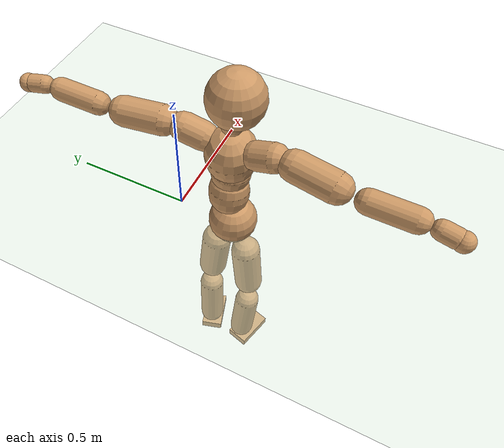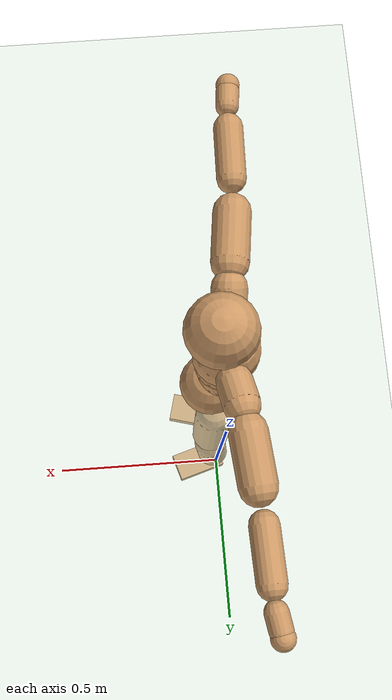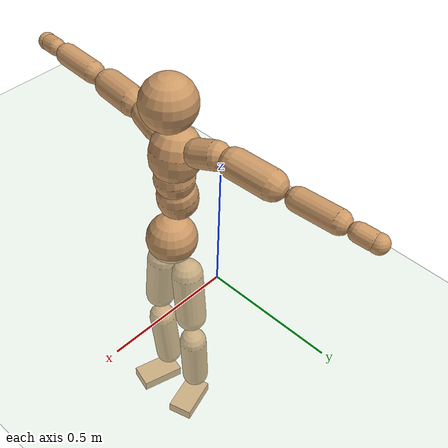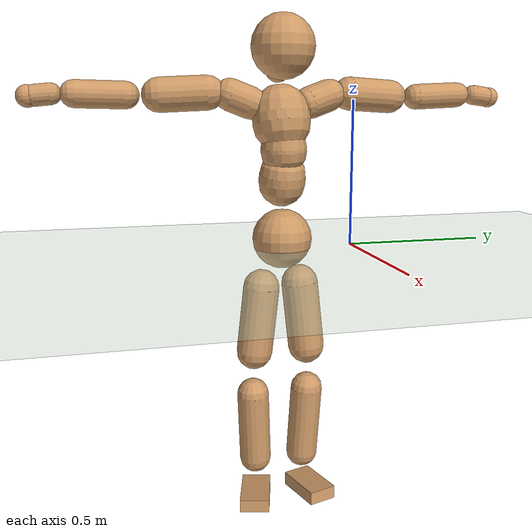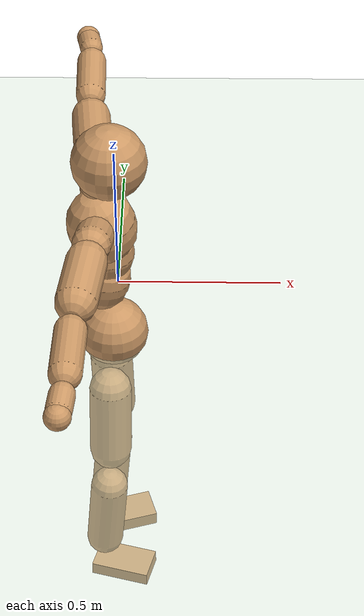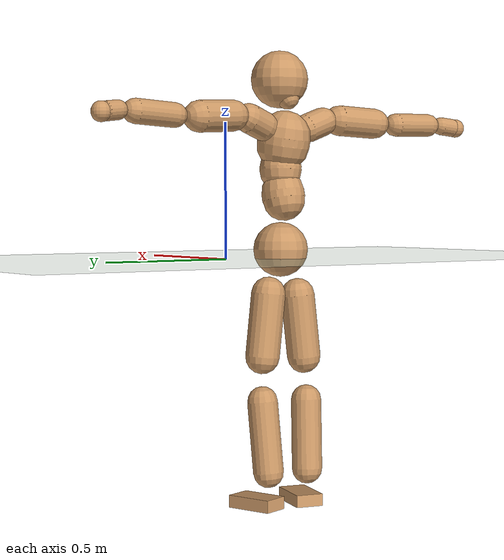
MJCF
<mujoco model="humanoid">
  <compiler coordinate="local"/>
  <default>
    <joint damping="0.0" armature="0.01" stiffness="0.0" limited="true"/>
    <geom conaffinity="1" condim="3" contype="7" margin="0.001" rgba="0.8 0.6 .4 1"/>
  </default>
  <asset>
    <texture type="skybox" builtin="gradient" rgb1=".4 .5 .6" rgb2="0 0 0" width="100" height="100"/>
    <texture builtin="flat" height="1278" mark="cross" markrgb="1 1 1" name="texgeom" random="0.01" rgb1="0.8 0.6 0.4" rgb2="0.8 0.6 0.4" type="cube" width="127"/>
    <texture builtin="checker" height="100" name="texplane" rgb1="0 0 0" rgb2="0.8 0.8 0.8" type="2d" width="100"/>
    <material name="MatPlane" reflectance="0.5" shininess="1" specular="1" texrepeat="60 60" texture="texplane"/>
    <material name="geom" texture="texgeom" texuniform="true"/>
  </asset>
  <worldbody>
    <light cutoff="100" diffuse="1 1 1" dir="-0 0 -1.3" directional="true" exponent="1" pos="0 0 1.3" specular=".1 .1 .1"/>
    <geom conaffinity="1" condim="3" name="floor" pos="0 0 0" rgba="0.8 0.9 0.8 1" size="100 100 .2" type="plane" material="MatPlane"/>
    <body name="Pelvis" pos="-0.0026 -0.2494 0.0318">
      <freejoint name="Pelvis"/>
      <geom type="sphere" contype="1" conaffinity="1" density="500" size="0.1029" pos="0.0000 0.0000 0.0000" name="Pelvis"/>
      <body name="L_Hip" pos="-0.0166 0.0605 -0.0858">
        <joint name="L_Hip_x" type="hinge" pos="0 0 0" axis="1 0 0" stiffness="800" damping="80" armature="0.02" range="-180.0000 180.0000"/>
        <joint name="L_Hip_y" type="hinge" pos="0 0 0" axis="0 1 0" stiffness="800" damping="80" armature="0.02" range="-180.0000 180.0000"/>
        <joint name="L_Hip_z" type="hinge" pos="0 0 0" axis="0 0 1" stiffness="800" damping="80" armature="0.02" range="-180.0000 180.0000"/>
        <geom type="capsule" contype="1" conaffinity="1" density="500" fromto="0.0011 0.0083 -0.0788 0.0044 0.0334 -0.3154" size="0.0641" name="L_Hip"/>
        <body name="L_Knee" pos="0.0055 0.0417 -0.3942">
          <joint name="L_Knee_x" type="hinge" pos="0 0 0" axis="1 0 0" stiffness="800" damping="80" armature="0.02" range="-180.0000 180.0000"/>
          <joint name="L_Knee_y" type="hinge" pos="0 0 0" axis="0 1 0" stiffness="800" damping="80" armature="0.02" range="-180.0000 180.0000"/>
          <joint name="L_Knee_z" type="hinge" pos="0 0 0" axis="0 0 1" stiffness="800" damping="80" armature="0.02" range="-180.0000 180.0000"/>
          <geom type="capsule" contype="1" conaffinity="1" density="500" fromto="-0.0081 -0.0032 -0.0883 -0.0324 -0.0129 -0.3532" size="0.0574" name="L_Knee"/>
          <body name="L_Ankle" pos="-0.0405 -0.0162 -0.4415">
            <joint name="L_Ankle_x" type="hinge" pos="0 0 0" axis="1 0 0" stiffness="800" damping="80" armature="0.02" range="-180.0000 180.0000"/>
            <joint name="L_Ankle_y" type="hinge" pos="0 0 0" axis="0 1 0" stiffness="800" damping="80" armature="0.02" range="-180.0000 180.0000"/>
            <joint name="L_Ankle_z" type="hinge" pos="0 0 0" axis="0 0 1" stiffness="800" damping="80" armature="0.02" range="-180.0000 180.0000"/>
            <geom type="box" contype="1" conaffinity="1" density="500" pos="0.0628 0.0191 -0.0308" size="0.0909 0.0516 0.0236" quat="0.9892 0.0000 0.0000 0.1468" name="L_Ankle"/>
            <body name="L_Toe" pos="0.1256 0.0381 -0.0616">
              <joint name="L_Toe_x" type="hinge" pos="0 0 0" axis="1 0 0" stiffness="500" damping="50" armature="0.02" range="-180.0000 180.0000"/>
              <joint name="L_Toe_y" type="hinge" pos="0 0 0" axis="0 1 0" stiffness="500" damping="50" armature="0.02" range="-180.0000 180.0000"/>
              <joint name="L_Toe_z" type="hinge" pos="0 0 0" axis="0 0 1" stiffness="500" damping="50" armature="0.02" range="-180.0000 180.0000"/>
              <geom type="box" contype="1" conaffinity="1" density="500" pos="0.0000 0.0000 0.0300" size="0.0011 0.0026 0.0011" quat="0.9884 0.0000 0.0000 0.1517" name="L_Toe"/>
            </body>
          </body>
        </body>
      </body>
      <body name="R_Hip" pos="-0.0112 -0.0628 -0.095">
        <joint name="R_Hip_x" type="hinge" pos="0 0 0" axis="1 0 0" stiffness="800" damping="80" armature="0.02" range="-180.0000 180.0000"/>
        <joint name="R_Hip_y" type="hinge" pos="0 0 0" axis="0 1 0" stiffness="800" damping="80" armature="0.02" range="-180.0000 180.0000"/>
        <joint name="R_Hip_z" type="hinge" pos="0 0 0" axis="0 0 1" stiffness="800" damping="80" armature="0.02" range="-180.0000 180.0000"/>
        <geom type="capsule" contype="1" conaffinity="1" density="500" fromto="-0.0015 -0.0086 -0.0788 -0.0060 -0.0343 -0.3152" size="0.0636" name="R_Hip"/>
        <body name="R_Knee" pos="-0.0075 -0.0429 -0.394">
          <joint name="R_Knee_x" type="hinge" pos="0 0 0" axis="1 0 0" stiffness="800" damping="80" armature="0.02" range="-180.0000 180.0000"/>
          <joint name="R_Knee_y" type="hinge" pos="0 0 0" axis="0 1 0" stiffness="800" damping="80" armature="0.02" range="-180.0000 180.0000"/>
          <joint name="R_Knee_z" type="hinge" pos="0 0 0" axis="0 0 1" stiffness="800" damping="80" armature="0.02" range="-180.0000 180.0000"/>
          <geom type="capsule" contype="1" conaffinity="1" density="500" fromto="-0.0074 0.0041 -0.0872 -0.0297 0.0163 -0.3486" size="0.0573" name="R_Knee"/>
          <body name="R_Ankle" pos="-0.0371 0.0204 -0.4358">
            <joint name="R_Ankle_x" type="hinge" pos="0 0 0" axis="1 0 0" stiffness="800" damping="80" armature="0.02" range="-180.0000 180.0000"/>
            <joint name="R_Ankle_y" type="hinge" pos="0 0 0" axis="0 1 0" stiffness="800" damping="80" armature="0.02" range="-180.0000 180.0000"/>
            <joint name="R_Ankle_z" type="hinge" pos="0 0 0" axis="0 0 1" stiffness="800" damping="80" armature="0.02" range="-180.0000 180.0000"/>
            <geom type="box" contype="1" conaffinity="1" density="500" pos="0.0668 -0.0180 -0.0319" size="0.0925 0.0525 0.0231" quat="0.9914 0.0000 0.0000 -0.1312" name="R_Ankle"/>
            <body name="R_Toe" pos="0.1336 -0.036 -0.0638">
              <joint name="R_Toe_x" type="hinge" pos="0 0 0" axis="1 0 0" stiffness="500" damping="50" armature="0.02" range="-180.0000 180.0000"/>
              <joint name="R_Toe_y" type="hinge" pos="0 0 0" axis="0 1 0" stiffness="500" damping="50" armature="0.02" range="-180.0000 180.0000"/>
              <joint name="R_Toe_z" type="hinge" pos="0 0 0" axis="0 0 1" stiffness="500" damping="50" armature="0.02" range="-180.0000 180.0000"/>
              <geom type="box" contype="1" conaffinity="1" density="500" pos="0.0000 0.0000 0.0323" size="0.0011 0.0026 0.0012" quat="0.9925 0.0000 0.0000 -0.1225" name="R_Toe"/>
            </body>
          </body>
        </body>
      </body>
      <body name="Torso" pos="-0.0405 0.0048 0.1317">
        <joint name="Torso_x" type="hinge" pos="0 0 0" axis="1 0 0" stiffness="1000" damping="100" armature="0.02" range="-180.0000 180.0000"/>
        <joint name="Torso_y" type="hinge" pos="0 0 0" axis="0 1 0" stiffness="1000" damping="100" armature="0.02" range="-180.0000 180.0000"/>
        <joint name="Torso_z" type="hinge" pos="0 0 0" axis="0 0 1" stiffness="1000" damping="100" armature="0.02" range="-180.0000 180.0000"/>
        <geom type="capsule" contype="1" conaffinity="1" density="500" fromto="0.0167 0.0029 0.0853 0.0111 0.0020 0.0569" size="0.080538" name="Torso"/>
        <body name="Spine" pos="0.0278 0.0049 0.1421">
          <joint name="Spine_x" type="hinge" pos="0 0 0" axis="1 0 0" stiffness="1000" damping="100" armature="0.02" range="-180.0000 180.0000"/>
          <joint name="Spine_y" type="hinge" pos="0 0 0" axis="0 1 0" stiffness="1000" damping="100" armature="0.02" range="-180.0000 180.0000"/>
          <joint name="Spine_z" type="hinge" pos="0 0 0" axis="0 0 1" stiffness="1000" damping="100" armature="0.02" range="-180.0000 180.0000"/>
          <geom type="capsule" contype="1" conaffinity="1" density="500" fromto="0.0023 -0.0016 0.0346 0.0015 -0.0011 0.0231" size="0.07905" name="Spine"/>
          <body name="Chest" pos="0.0038 -0.0027 0.0577">
            <joint name="Chest_x" type="hinge" pos="0 0 0" axis="1 0 0" stiffness="1000" damping="100" armature="0.02" range="-180.0000 180.0000"/>
            <joint name="Chest_y" type="hinge" pos="0 0 0" axis="0 1 0" stiffness="1000" damping="100" armature="0.02" range="-180.0000 180.0000"/>
            <joint name="Chest_z" type="hinge" pos="0 0 0" axis="0 0 1" stiffness="1000" damping="100" armature="0.02" range="-180.0000 180.0000"/>
            <geom type="capsule" contype="1" conaffinity="1" density="500" fromto="-0.0168 -0.0050 0.0906 -0.0112 -0.0034 0.0604" size="0.099138" name="Chest"/>
            <body name="Neck" pos="-0.0379 -0.0144 0.2185">
              <joint name="Neck_x" type="hinge" pos="0 0 0" axis="1 0 0" stiffness="500" damping="50" armature="0.02" range="-180.0000 180.0000"/>
              <joint name="Neck_y" type="hinge" pos="0 0 0" axis="0 1 0" stiffness="500" damping="50" armature="0.02" range="-180.0000 180.0000"/>
              <joint name="Neck_z" type="hinge" pos="0 0 0" axis="0 0 1" stiffness="500" damping="50" armature="0.02" range="-180.0000 180.0000"/>
              <geom type="capsule" contype="1" conaffinity="1" density="500" fromto="0.0102 0.0019 0.0175 0.0408 0.0075 0.0702" size="0.043617" name="Neck"/>
              <body name="Head" pos="0.051 0.0093 0.0877">
                <joint name="Head_x" type="hinge" pos="0 0 0" axis="1 0 0" stiffness="500" damping="50" armature="0.02" range="-180.0000 180.0000"/>
                <joint name="Head_y" type="hinge" pos="0 0 0" axis="0 1 0" stiffness="500" damping="50" armature="0.02" range="-180.0000 180.0000"/>
                <joint name="Head_z" type="hinge" pos="0 0 0" axis="0 0 1" stiffness="500" damping="50" armature="0.02" range="-180.0000 180.0000"/>
                <geom type="sphere" contype="1" conaffinity="1" density="500" size="0.1073" pos="0.0000 0.0000 0.0000" name="Head"/>
              </body>
            </body>
            <body name="L_Thorax" pos="-0.0209 0.0728 0.118">
              <joint name="L_Thorax_x" type="hinge" pos="0 0 0" axis="1 0 0" stiffness="500" damping="50" armature="0.02" range="-180.0000 180.0000"/>
              <joint name="L_Thorax_y" type="hinge" pos="0 0 0" axis="0 1 0" stiffness="500" damping="50" armature="0.02" range="-180.0000 180.0000"/>
              <joint name="L_Thorax_z" type="hinge" pos="0 0 0" axis="0 0 1" stiffness="500" damping="50" armature="0.02" range="-180.0000 180.0000"/>
              <geom type="capsule" contype="1" conaffinity="1" density="500" fromto="-0.0042 0.0249 0.0086 -0.0170 0.0995 0.0345" size="0.0547" name="L_Thorax"/>
              <body name="L_Shoulder" pos="-0.0212 0.1243 0.0431">
                <joint name="L_Shoulder_x" type="hinge" pos="0 0 0" axis="1 0 0" stiffness="500" damping="50" armature="0.02" range="-720.0000 720.0000"/>
                <joint name="L_Shoulder_y" type="hinge" pos="0 0 0" axis="0 1 0" stiffness="500" damping="50" armature="0.02" range="-720.0000 720.0000"/>
                <joint name="L_Shoulder_z" type="hinge" pos="0 0 0" axis="0 0 1" stiffness="500" damping="50" armature="0.02" range="-720.0000 720.0000"/>
                <geom type="capsule" contype="1" conaffinity="1" density="500" fromto="-0.0049 0.0518 -0.0030 -0.0196 0.2070 -0.0120" size="0.0575" name="L_Shoulder"/>
                <body name="L_Elbow" pos="-0.0244 0.2588 -0.015">
                  <joint name="L_Elbow_x" type="hinge" pos="0 0 0" axis="1 0 0" stiffness="500" damping="50" armature="0.02" range="-720.0000 720.0000"/>
                  <joint name="L_Elbow_y" type="hinge" pos="0 0 0" axis="0 1 0" stiffness="500" damping="50" armature="0.02" range="-720.0000 720.0000"/>
                  <joint name="L_Elbow_z" type="hinge" pos="0 0 0" axis="0 0 1" stiffness="500" damping="50" armature="0.02" range="-720.0000 720.0000"/>
                  <geom type="capsule" contype="1" conaffinity="1" density="500" fromto="-0.0015 0.0537 0.0025 -0.0059 0.2149 0.0099" size="0.0444" name="L_Elbow"/>
                  <body name="L_Wrist" pos="-0.0074 0.2686 0.0124">
                    <joint name="L_Wrist_x" type="hinge" pos="0 0 0" axis="1 0 0" stiffness="300" damping="30" armature="0.02" range="-180.0000 180.0000"/>
                    <joint name="L_Wrist_y" type="hinge" pos="0 0 0" axis="0 1 0" stiffness="300" damping="30" armature="0.02" range="-180.0000 180.0000"/>
                    <joint name="L_Wrist_z" type="hinge" pos="0 0 0" axis="0 0 1" stiffness="300" damping="30" armature="0.02" range="-180.0000 180.0000"/>
                    <geom type="capsule" contype="1" conaffinity="1" density="500" fromto="-0.0031 0.0175 -0.0021 -0.0125 0.0700 -0.0085" size="0.0348" name="L_Wrist"/>
                    <body name="L_Hand" pos="-0.0157 0.0874 -0.0107">
                      <joint name="L_Hand_x" type="hinge" pos="0 0 0" axis="1 0 0" stiffness="300" damping="30" armature="0.02" range="-180.0000 180.0000"/>
                      <joint name="L_Hand_y" type="hinge" pos="0 0 0" axis="0 1 0" stiffness="300" damping="30" armature="0.02" range="-180.0000 180.0000"/>
                      <joint name="L_Hand_z" type="hinge" pos="0 0 0" axis="0 0 1" stiffness="300" damping="30" armature="0.02" range="-180.0000 180.0000"/>
                      <geom type="sphere" contype="1" conaffinity="1" density="500" size="0.0360" pos="0.0000 0.0000 0.0000" name="L_Hand"/>
                    </body>
                  </body>
                </body>
              </body>
            </body>
            <body name="R_Thorax" pos="-0.0252 -0.0836 0.1167">
              <joint name="R_Thorax_x" type="hinge" pos="0 0 0" axis="1 0 0" stiffness="500" damping="50" armature="0.02" range="-180.0000 180.0000"/>
              <joint name="R_Thorax_y" type="hinge" pos="0 0 0" axis="0 1 0" stiffness="500" damping="50" armature="0.02" range="-180.0000 180.0000"/>
              <joint name="R_Thorax_z" type="hinge" pos="0 0 0" axis="0 0 1" stiffness="500" damping="50" armature="0.02" range="-180.0000 180.0000"/>
              <geom type="capsule" contype="1" conaffinity="1" density="500" fromto="-0.0019 -0.0227 0.0089 -0.0077 -0.0908 0.0357" size="0.0545" name="R_Thorax"/>
              <body name="R_Shoulder" pos="-0.0096 -0.1135 0.0446">
                <joint name="R_Shoulder_x" type="hinge" pos="0 0 0" axis="1 0 0" stiffness="500" damping="50" armature="0.02" range="-720.0000 720.0000"/>
                <joint name="R_Shoulder_y" type="hinge" pos="0 0 0" axis="0 1 0" stiffness="500" damping="50" armature="0.02" range="-720.0000 720.0000"/>
                <joint name="R_Shoulder_z" type="hinge" pos="0 0 0" axis="0 0 1" stiffness="500" damping="50" armature="0.02" range="-720.0000 720.0000"/>
                <geom type="capsule" contype="1" conaffinity="1" density="500" fromto="-0.0067 -0.0523 -0.0024 -0.0269 -0.2093 -0.0096" size="0.0579" name="R_Shoulder"/>
                <body name="R_Elbow" pos="-0.0337 -0.2616 -0.012">
                  <joint name="R_Elbow_x" type="hinge" pos="0 0 0" axis="1 0 0" stiffness="500" damping="50" armature="0.02" range="-720.0000 720.0000"/>
                  <joint name="R_Elbow_y" type="hinge" pos="0 0 0" axis="0 1 0" stiffness="500" damping="50" armature="0.02" range="-720.0000 720.0000"/>
                  <joint name="R_Elbow_z" type="hinge" pos="0 0 0" axis="0 0 1" stiffness="500" damping="50" armature="0.02" range="-720.0000 720.0000"/>
                  <geom type="capsule" contype="1" conaffinity="1" density="500" fromto="-0.0015 -0.0542 0.0012 -0.0058 -0.2166 0.0048" size="0.045" name="R_Elbow"/>
                  <body name="R_Wrist" pos="-0.0073 -0.2708 0.006">
                    <joint name="R_Wrist_x" type="hinge" pos="0 0 0" axis="1 0 0" stiffness="300" damping="30" armature="0.02" range="-180.0000 180.0000"/>
                    <joint name="R_Wrist_y" type="hinge" pos="0 0 0" axis="0 1 0" stiffness="300" damping="30" armature="0.02" range="-180.0000 180.0000"/>
                    <joint name="R_Wrist_z" type="hinge" pos="0 0 0" axis="0 0 1" stiffness="300" damping="30" armature="0.02" range="-180.0000 180.0000"/>
                    <geom type="capsule" contype="1" conaffinity="1" density="500" fromto="-0.0020 -0.0178 -0.0017 -0.0079 -0.0714 -0.0069" size="0.0353" name="R_Wrist"/>
                    <body name="R_Hand" pos="-0.0099 -0.0892 -0.0087">
                      <joint name="R_Hand_x" type="hinge" pos="0 0 0" axis="1 0 0" stiffness="300" damping="30" armature="0.02" range="-180.0000 180.0000"/>
                      <joint name="R_Hand_y" type="hinge" pos="0 0 0" axis="0 1 0" stiffness="300" damping="30" armature="0.02" range="-180.0000 180.0000"/>
                      <joint name="R_Hand_z" type="hinge" pos="0 0 0" axis="0 0 1" stiffness="300" damping="30" armature="0.02" range="-180.0000 180.0000"/>
                      <geom type="sphere" contype="1" conaffinity="1" density="500" size="0.0364" pos="0.0000 0.0000 0.0000" name="R_Hand"/>
                    </body>
                  </body>
                </body>
              </body>
            </body>
          </body>
        </body>
      </body>
    </body>
  </worldbody>
  <actuator>
    <motor name="L_Hip_x" joint="L_Hip_x" gear="500"/>
    <motor name="L_Hip_y" joint="L_Hip_y" gear="500"/>
    <motor name="L_Hip_z" joint="L_Hip_z" gear="500"/>
    <motor name="L_Knee_x" joint="L_Knee_x" gear="500"/>
    <motor name="L_Knee_y" joint="L_Knee_y" gear="500"/>
    <motor name="L_Knee_z" joint="L_Knee_z" gear="500"/>
    <motor name="L_Ankle_x" joint="L_Ankle_x" gear="500"/>
    <motor name="L_Ankle_y" joint="L_Ankle_y" gear="500"/>
    <motor name="L_Ankle_z" joint="L_Ankle_z" gear="500"/>
    <motor name="L_Toe_x" joint="L_Toe_x" gear="500"/>
    <motor name="L_Toe_y" joint="L_Toe_y" gear="500"/>
    <motor name="L_Toe_z" joint="L_Toe_z" gear="500"/>
    <motor name="R_Hip_x" joint="R_Hip_x" gear="500"/>
    <motor name="R_Hip_y" joint="R_Hip_y" gear="500"/>
    <motor name="R_Hip_z" joint="R_Hip_z" gear="500"/>
    <motor name="R_Knee_x" joint="R_Knee_x" gear="500"/>
    <motor name="R_Knee_y" joint="R_Knee_y" gear="500"/>
    <motor name="R_Knee_z" joint="R_Knee_z" gear="500"/>
    <motor name="R_Ankle_x" joint="R_Ankle_x" gear="500"/>
    <motor name="R_Ankle_y" joint="R_Ankle_y" gear="500"/>
    <motor name="R_Ankle_z" joint="R_Ankle_z" gear="500"/>
    <motor name="R_Toe_x" joint="R_Toe_x" gear="500"/>
    <motor name="R_Toe_y" joint="R_Toe_y" gear="500"/>
    <motor name="R_Toe_z" joint="R_Toe_z" gear="500"/>
    <motor name="Torso_x" joint="Torso_x" gear="500"/>
    <motor name="Torso_y" joint="Torso_y" gear="500"/>
    <motor name="Torso_z" joint="Torso_z" gear="500"/>
    <motor name="Spine_x" joint="Spine_x" gear="500"/>
    <motor name="Spine_y" joint="Spine_y" gear="500"/>
    <motor name="Spine_z" joint="Spine_z" gear="500"/>
    <motor name="Chest_x" joint="Chest_x" gear="500"/>
    <motor name="Chest_y" joint="Chest_y" gear="500"/>
    <motor name="Chest_z" joint="Chest_z" gear="500"/>
    <motor name="Neck_x" joint="Neck_x" gear="500"/>
    <motor name="Neck_y" joint="Neck_y" gear="500"/>
    <motor name="Neck_z" joint="Neck_z" gear="500"/>
    <motor name="Head_x" joint="Head_x" gear="500"/>
    <motor name="Head_y" joint="Head_y" gear="500"/>
    <motor name="Head_z" joint="Head_z" gear="500"/>
    <motor name="L_Thorax_x" joint="L_Thorax_x" gear="500"/>
    <motor name="L_Thorax_y" joint="L_Thorax_y" gear="500"/>
    <motor name="L_Thorax_z" joint="L_Thorax_z" gear="500"/>
    <motor name="L_Shoulder_x" joint="L_Shoulder_x" gear="500"/>
    <motor name="L_Shoulder_y" joint="L_Shoulder_y" gear="500"/>
    <motor name="L_Shoulder_z" joint="L_Shoulder_z" gear="500"/>
    <motor name="L_Elbow_x" joint="L_Elbow_x" gear="500"/>
    <motor name="L_Elbow_y" joint="L_Elbow_y" gear="500"/>
    <motor name="L_Elbow_z" joint="L_Elbow_z" gear="500"/>
    <motor name="L_Wrist_x" joint="L_Wrist_x" gear="500"/>
    <motor name="L_Wrist_y" joint="L_Wrist_y" gear="500"/>
    <motor name="L_Wrist_z" joint="L_Wrist_z" gear="500"/>
    <motor name="L_Hand_x" joint="L_Hand_x" gear="500"/>
    <motor name="L_Hand_y" joint="L_Hand_y" gear="500"/>
    <motor name="L_Hand_z" joint="L_Hand_z" gear="500"/>
    <motor name="R_Thorax_x" joint="R_Thorax_x" gear="500"/>
    <motor name="R_Thorax_y" joint="R_Thorax_y" gear="500"/>
    <motor name="R_Thorax_z" joint="R_Thorax_z" gear="500"/>
    <motor name="R_Shoulder_x" joint="R_Shoulder_x" gear="500"/>
    <motor name="R_Shoulder_y" joint="R_Shoulder_y" gear="500"/>
    <motor name="R_Shoulder_z" joint="R_Shoulder_z" gear="500"/>
    <motor name="R_Elbow_x" joint="R_Elbow_x" gear="500"/>
    <motor name="R_Elbow_y" joint="R_Elbow_y" gear="500"/>
    <motor name="R_Elbow_z" joint="R_Elbow_z" gear="500"/>
    <motor name="R_Wrist_x" joint="R_Wrist_x" gear="500"/>
    <motor name="R_Wrist_y" joint="R_Wrist_y" gear="500"/>
    <motor name="R_Wrist_z" joint="R_Wrist_z" gear="500"/>
    <motor name="R_Hand_x" joint="R_Hand_x" gear="500"/>
    <motor name="R_Hand_y" joint="R_Hand_y" gear="500"/>
    <motor name="R_Hand_z" joint="R_Hand_z" gear="500"/>
  </actuator>
  <contact>
    <exclude body1="Torso" body2="Chest"/>
    <exclude body1="Head" body2="Chest"/>
    <exclude body1="R_Knee" body2="R_Toe"/>
    <exclude body1="R_Knee" body2="L_Ankle"/>
    <exclude body1="R_Knee" body2="L_Toe"/>
    <exclude body1="L_Knee" body2="L_Toe"/>
    <exclude body1="L_Knee" body2="R_Ankle"/>
    <exclude body1="L_Knee" body2="R_Toe"/>
    <exclude body1="L_Shoulder" body2="Chest"/>
    <exclude body1="R_Shoulder" body2="Chest"/>
  </contact>
  <sensor/>
  <size njmax="700" nconmax="700"/>
</mujoco>
